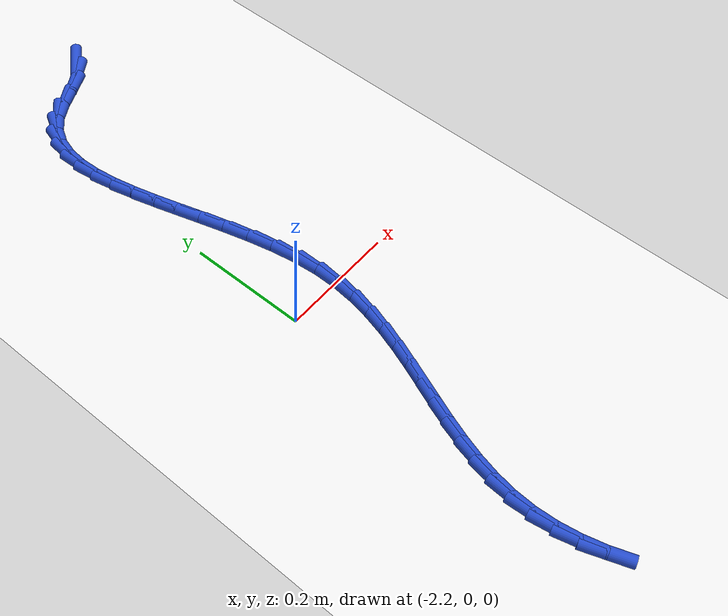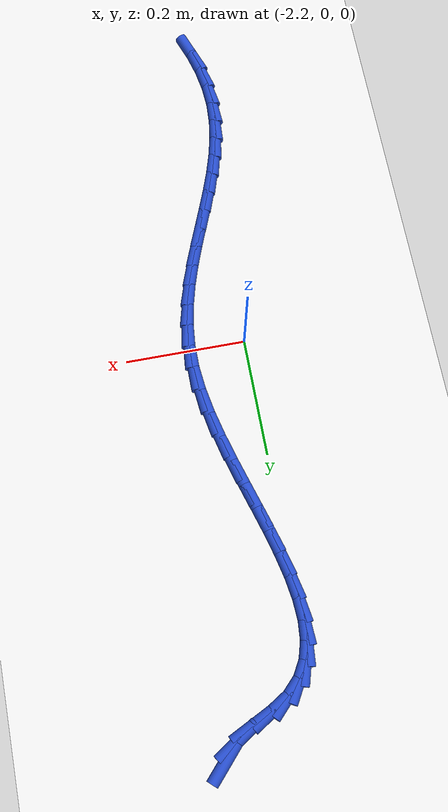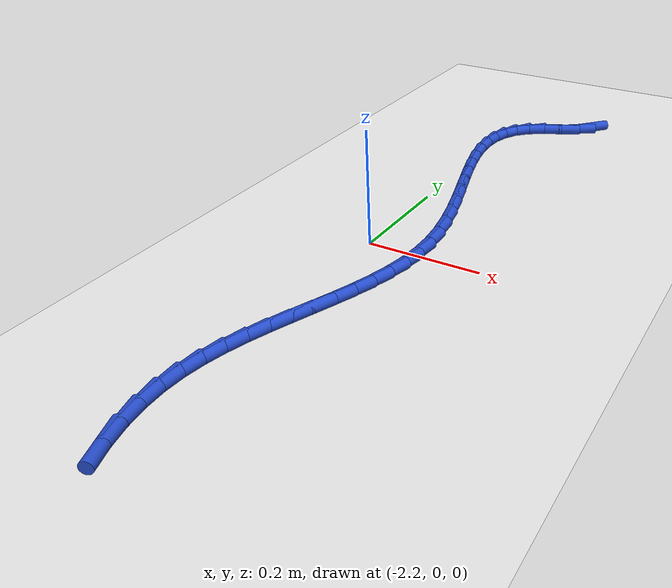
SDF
<sdf version="1.6">
 <world name="default">
  <model name="ground_plane">
   <static>1</static>
   <link name="link">
    <collision name="collision">
     <geometry><plane><normal>0 0 1</normal><size>100 100</size></plane></geometry>
     <surface><friction><ode><mu>100</mu><mu2>50</mu2></ode></friction></surface>
    </collision>
    <visual name="visual">
     <cast_shadows>0</cast_shadows>
     <geometry><plane><normal>0 0 1</normal><size>100 100</size></plane></geometry>
     <material>
      <script><uri>file://media/materials/scripts/gazebo.material</uri><name>Gazebo/WhiteGlow</name></script>
     </material>
    </visual>
   </link>
  </model>
  <model name="line">
   <link name="link_93">
    <pose>-2.044952308622921 0.6533621162688814 0.01 0 1.57 0.831932461259714</pose>
    <collision name="collision">
     <geometry><cylinder><radius>0.01</radius><length>0.08</length></cylinder></geometry>
    </collision>
    <visual name="visual">
     <material>
      <script><name>Gazebo/Blue</name><uri>file://media/materials/scripts/gazebo.material</uri></script>
     </material>
     <geometry><cylinder><radius>0.01</radius><length>0.08</length></cylinder></geometry>
    </visual>
   </link>
   <link name="link_94">
    <pose>-2.0663035255648667 0.6299252097527097 0.01 0 1.57 0.5781519270409127</pose>
    <collision name="collision">
     <geometry><cylinder><radius>0.01</radius><length>0.08</length></cylinder></geometry>
    </collision>
    <visual name="visual">
     <material>
      <script><name>Gazebo/Blue</name><uri>file://media/materials/scripts/gazebo.material</uri></script>
     </material>
     <geometry><cylinder><radius>0.01</radius><length>0.08</length></cylinder></geometry>
    </visual>
   </link>
   <link name="link_95">
    <pose>-2.094917768296748 0.6112535496528849 0.01 0 1.57 0.4502461342900132</pose>
    <collision name="collision">
     <geometry><cylinder><radius>0.01</radius><length>0.08</length></cylinder></geometry>
    </collision>
    <visual name="visual">
     <material>
      <script><name>Gazebo/Blue</name><uri>file://media/materials/scripts/gazebo.material</uri></script>
     </material>
     <geometry><cylinder><radius>0.01</radius><length>0.08</length></cylinder></geometry>
    </visual>
   </link>
   <link name="link_96">
    <pose>-2.1276013413956534 0.5954556612444428 0.01 0 1.57 0.5509774798069474</pose>
    <collision name="collision">
     <geometry><cylinder><radius>0.01</radius><length>0.08</length></cylinder></geometry>
    </collision>
    <visual name="visual">
     <material>
      <script><name>Gazebo/Blue</name><uri>file://media/materials/scripts/gazebo.material</uri></script>
     </material>
     <geometry><cylinder><radius>0.01</radius><length>0.08</length></cylinder></geometry>
    </visual>
   </link>
   <link name="link_97">
    <pose>-2.156287959641153 0.5778291419069826 0.01 0 1.57 0.7949116875358704</pose>
    <collision name="collision">
     <geometry><cylinder><radius>0.01</radius><length>0.08</length></cylinder></geometry>
    </collision>
    <visual name="visual">
     <material>
      <script><name>Gazebo/Blue</name><uri>file://media/materials/scripts/gazebo.material</uri></script>
     </material>
     <geometry><cylinder><radius>0.01</radius><length>0.08</length></cylinder></geometry>
    </visual>
   </link>
   <link name="link_98">
    <pose>-2.1774460260721145 0.5562646208462402 0.01 0 1.57 1.0557283186327908</pose>
    <collision name="collision">
     <geometry><cylinder><radius>0.01</radius><length>0.08</length></cylinder></geometry>
    </collision>
    <visual name="visual">
     <material>
      <script><name>Gazebo/Blue</name><uri>file://media/materials/scripts/gazebo.material</uri></script>
     </material>
     <geometry><cylinder><radius>0.01</radius><length>0.08</length></cylinder></geometry>
    </visual>
   </link>
   <link name="link_99">
    <pose>-2.1917221374079987 0.531043207895522 0.01 0 1.57 1.2915492542404634</pose>
    <collision name="collision">
     <geometry><cylinder><radius>0.01</radius><length>0.08</length></cylinder></geometry>
    </collision>
    <visual name="visual">
     <material>
      <script><name>Gazebo/Blue</name><uri>file://media/materials/scripts/gazebo.material</uri></script>
     </material>
     <geometry><cylinder><radius>0.01</radius><length>0.08</length></cylinder></geometry>
    </visual>
   </link>
   <link name="link_100">
    <pose>-2.199899642918046 0.5025242534738984 0.01 0 1.57 1.4800573517806421</pose>
    <collision name="collision">
     <geometry><cylinder><radius>0.01</radius><length>0.08</length></cylinder></geometry>
    </collision>
    <visual name="visual">
     <material>
      <script><name>Gazebo/Blue</name><uri>file://media/materials/scripts/gazebo.material</uri></script>
     </material>
     <geometry><cylinder><radius>0.01</radius><length>0.08</length></cylinder></geometry>
    </visual>
   </link>
   <link name="link_101">
    <pose>-2.202761891871494 0.47106710800044155 0.01 0 1.57 -1.5217799434433512</pose>
    <collision name="collision">
     <geometry><cylinder><radius>0.01</radius><length>0.08</length></cylinder></geometry>
    </collision>
    <visual name="visual">
     <material>
      <script><name>Gazebo/Blue</name><uri>file://media/materials/scripts/gazebo.material</uri></script>
     </material>
     <geometry><cylinder><radius>0.01</radius><length>0.08</length></cylinder></geometry>
    </visual>
   </link>
   <link name="link_102">
    <pose>-2.2010922335375813 0.43703112189422155 0.01 0 1.57 -1.4224487602350115</pose>
    <collision name="collision">
     <geometry><cylinder><radius>0.01</radius><length>0.08</length></cylinder></geometry>
    </collision>
    <visual name="visual">
     <material>
      <script><name>Gazebo/Blue</name><uri>file://media/materials/scripts/gazebo.material</uri></script>
     </material>
     <geometry><cylinder><radius>0.01</radius><length>0.08</length></cylinder></geometry>
    </visual>
   </link>
   <link name="link_103">
    <pose>-2.1956740171855476 0.4007756455743106 0.01 0 1.57 -1.3542963332754439</pose>
    <collision name="collision">
     <geometry><cylinder><radius>0.01</radius><length>0.08</length></cylinder></geometry>
    </collision>
    <visual name="visual">
     <material>
      <script><name>Gazebo/Blue</name><uri>file://media/materials/scripts/gazebo.material</uri></script>
     </material>
     <geometry><cylinder><radius>0.01</radius><length>0.08</length></cylinder></geometry>
    </visual>
   </link>
   <link name="link_104">
    <pose>-2.187290592084632 0.3626600294597793 0.01 0 1.57 -1.3101724949952873</pose>
    <collision name="collision">
     <geometry><cylinder><radius>0.01</radius><length>0.08</length></cylinder></geometry>
    </collision>
    <visual name="visual">
     <material>
      <script><name>Gazebo/Blue</name><uri>file://media/materials/scripts/gazebo.material</uri></script>
     </material>
     <geometry><cylinder><radius>0.01</radius><length>0.08</length></cylinder></geometry>
    </visual>
   </link>
   <link name="link_105">
    <pose>-2.176725307504072 0.3230436239696993 0.01 0 1.57 -1.2852825621000818</pose>
    <collision name="collision">
     <geometry><cylinder><radius>0.01</radius><length>0.08</length></cylinder></geometry>
    </collision>
    <visual name="visual">
     <material>
      <script><name>Gazebo/Blue</name><uri>file://media/materials/scripts/gazebo.material</uri></script>
     </material>
     <geometry><cylinder><radius>0.01</radius><length>0.08</length></cylinder></geometry>
    </visual>
   </link>
   <link name="link_106">
    <pose>-2.1647615127131066 0.2822857795231412 0.01 0 1.57 -1.2767580661294704</pose>
    <collision name="collision">
     <geometry><cylinder><radius>0.01</radius><length>0.08</length></cylinder></geometry>
    </collision>
    <visual name="visual">
     <material>
      <script><name>Gazebo/Blue</name><uri>file://media/materials/scripts/gazebo.material</uri></script>
     </material>
     <geometry><cylinder><radius>0.01</radius><length>0.08</length></cylinder></geometry>
    </visual>
   </link>
   <link name="link_107">
    <pose>-2.1521825569809754 0.24074584653917708 0.01 0 1.57 -1.2832364243620262</pose>
    <collision name="collision">
     <geometry><cylinder><radius>0.01</radius><length>0.08</length></cylinder></geometry>
    </collision>
    <visual name="visual">
     <material>
      <script><name>Gazebo/Blue</name><uri>file://media/materials/scripts/gazebo.material</uri></script>
     </material>
     <geometry><cylinder><radius>0.01</radius><length>0.08</length></cylinder></geometry>
    </visual>
   </link>
   <link name="link_108">
    <pose>-2.1397717895769164 0.19878317543687715 0.01 0 1.57 -1.3045979326550223</pose>
    <collision name="collision">
     <geometry><cylinder><radius>0.01</radius><length>0.08</length></cylinder></geometry>
    </collision>
    <visual name="visual">
     <material>
      <script><name>Gazebo/Blue</name><uri>file://media/materials/scripts/gazebo.material</uri></script>
     </material>
     <geometry><cylinder><radius>0.01</radius><length>0.08</length></cylinder></geometry>
    </visual>
   </link>
   <link name="link_109">
    <pose>-2.1283125597701695 0.15675711663531366 0.01 0 1.57 -1.3418525693171661</pose>
    <collision name="collision">
     <geometry><cylinder><radius>0.01</radius><length>0.08</length></cylinder></geometry>
    </collision>
    <visual name="visual">
     <material>
      <script><name>Gazebo/Blue</name><uri>file://media/materials/scripts/gazebo.material</uri></script>
     </material>
     <geometry><cylinder><radius>0.01</radius><length>0.08</length></cylinder></geometry>
    </visual>
   </link>
   <link name="link_110">
    <pose>-2.118588216829972 0.11502702055355671 0.01 0 1.57 -1.3971250213717685</pose>
    <collision name="collision">
     <geometry><cylinder><radius>0.01</radius><length>0.08</length></cylinder></geometry>
    </collision>
    <visual name="visual">
     <material>
      <script><name>Gazebo/Blue</name><uri>file://media/materials/scripts/gazebo.material</uri></script>
     </material>
     <geometry><cylinder><radius>0.01</radius><length>0.08</length></cylinder></geometry>
    </visual>
   </link>
   <link name="link_111">
    <pose>-2.1113821100255645 0.07395223761067869 0.01 0 1.57 -1.4736366704025128</pose>
    <collision name="collision">
     <geometry><cylinder><radius>0.01</radius><length>0.08</length></cylinder></geometry>
    </collision>
    <visual name="visual">
     <material>
      <script><name>Gazebo/Blue</name><uri>file://media/materials/scripts/gazebo.material</uri></script>
     </material>
     <geometry><cylinder><radius>0.01</radius><length>0.08</length></cylinder></geometry>
    </visual>
   </link>
   <link name="link_112">
    <pose>-2.107477588626184 0.03389211822575011 0.01 0 1.57 1.569566879979355</pose>
    <collision name="collision">
     <geometry><cylinder><radius>0.01</radius><length>0.08</length></cylinder></geometry>
    </collision>
    <visual name="visual">
     <material>
      <script><name>Gazebo/Blue</name><uri>file://media/materials/scripts/gazebo.material</uri></script>
     </material>
     <geometry><cylinder><radius>0.01</radius><length>0.08</length></cylinder></geometry>
    </visual>
   </link>
   <link name="link_113">
    <pose>-2.1075252135257485 -0.004844714443035523 0.01 0 1.57 1.4705594856462398</pose>
    <collision name="collision">
     <geometry><cylinder><radius>0.01</radius><length>0.08</length></cylinder></geometry>
    </collision>
    <visual name="visual">
     <material>
      <script><name>Gazebo/Blue</name><uri>file://media/materials/scripts/gazebo.material</uri></script>
     </material>
     <geometry><cylinder><radius>0.01</radius><length>0.08</length></cylinder></geometry>
    </visual>
   </link>
   <link name="link_114">
    <pose>-2.1112909859498448 -0.04228755302980149 0.01 0 1.57 1.3833446026816574</pose>
    <collision name="collision">
     <geometry><cylinder><radius>0.01</radius><length>0.08</length></cylinder></geometry>
    </collision>
    <visual name="visual">
     <material>
      <script><name>Gazebo/Blue</name><uri>file://media/materials/scripts/gazebo.material</uri></script>
     </material>
     <geometry><cylinder><radius>0.01</radius><length>0.08</length></cylinder></geometry>
    </visual>
   </link>
   <link name="link_115">
    <pose>-2.1181793992080156 -0.07860379191381112 0.01 0 1.57 1.3105684390459027</pose>
    <collision name="collision">
     <geometry><cylinder><radius>0.01</radius><length>0.08</length></cylinder></geometry>
    </collision>
    <visual name="visual">
     <material>
      <script><name>Gazebo/Blue</name><uri>file://media/materials/scripts/gazebo.material</uri></script>
     </material>
     <geometry><cylinder><radius>0.01</radius><length>0.08</length></cylinder></geometry>
    </visual>
   </link>
   <link name="link_116">
    <pose>-2.1275938695090284 -0.1139612369438722 0.01 0 1.57 1.2536929135223973</pose>
    <collision name="collision">
     <geometry><cylinder><radius>0.01</radius><length>0.08</length></cylinder></geometry>
    </collision>
    <visual name="visual">
     <material>
      <script><name>Gazebo/Blue</name><uri>file://media/materials/scripts/gazebo.material</uri></script>
     </material>
     <geometry><cylinder><radius>0.01</radius><length>0.08</length></cylinder></geometry>
    </visual>
   </link>
   <link name="link_117">
    <pose>-2.138937813061651 -0.14852769396879162 0.01 0 1.57 1.2133667143480118</pose>
    <collision name="collision">
     <geometry><cylinder><radius>0.01</radius><length>0.08</length></cylinder></geometry>
    </collision>
    <visual name="visual">
     <material>
      <script><name>Gazebo/Blue</name><uri>file://media/materials/scripts/gazebo.material</uri></script>
     </material>
     <geometry><cylinder><radius>0.01</radius><length>0.08</length></cylinder></geometry>
    </visual>
   </link>
   <link name="link_118">
    <pose>-2.1516146460746524 -0.18247096883737723 0.01 0 1.57 1.189827200727214</pose>
    <collision name="collision">
     <geometry><cylinder><radius>0.01</radius><length>0.08</length></cylinder></geometry>
    </collision>
    <visual name="visual">
     <material>
      <script><name>Gazebo/Blue</name><uri>file://media/materials/scripts/gazebo.material</uri></script>
     </material>
     <geometry><cylinder><radius>0.01</radius><length>0.08</length></cylinder></geometry>
    </visual>
   </link>
   <link name="link_119">
    <pose>-2.1650277847567985 -0.21595886739843417 0.01 0 1.57 1.1832284688659962</pose>
    <collision name="collision">
     <geometry><cylinder><radius>0.01</radius><length>0.08</length></cylinder></geometry>
    </collision>
    <visual name="visual">
     <material>
      <script><name>Gazebo/Blue</name><uri>file://media/materials/scripts/gazebo.material</uri></script>
     </material>
     <geometry><cylinder><radius>0.01</radius><length>0.08</length></cylinder></geometry>
    </visual>
   </link>
   <link name="link_120">
    <pose>-2.1785806453168584 -0.24915919550077031 0.01 0 1.57 1.1938450087404098</pose>
    <collision name="collision">
     <geometry><cylinder><radius>0.01</radius><length>0.08</length></cylinder></geometry>
    </collision>
    <visual name="visual">
     <material>
      <script><name>Gazebo/Blue</name><uri>file://media/materials/scripts/gazebo.material</uri></script>
     </material>
     <geometry><cylinder><radius>0.01</radius><length>0.08</length></cylinder></geometry>
    </visual>
   </link>
   <link name="link_121">
    <pose>-2.191676643963601 -0.28223975899319265 0.01 0 1.57 1.2221376311627217</pose>
    <collision name="collision">
     <geometry><cylinder><radius>0.01</radius><length>0.08</length></cylinder></geometry>
    </collision>
    <visual name="visual">
     <material>
      <script><name>Gazebo/Blue</name><uri>file://media/materials/scripts/gazebo.material</uri></script>
     </material>
     <geometry><cylinder><radius>0.01</radius><length>0.08</length></cylinder></geometry>
    </visual>
   </link>
   <link name="link_122">
    <pose>-2.2037191969057917 -0.3153683637245087 0.01 0 1.57 1.2686662041210388</pose>
    <collision name="collision">
     <geometry><cylinder><radius>0.01</radius><length>0.08</length></cylinder></geometry>
    </collision>
    <visual name="visual">
     <material>
      <script><name>Gazebo/Blue</name><uri>file://media/materials/scripts/gazebo.material</uri></script>
     </material>
     <geometry><cylinder><radius>0.01</radius><length>0.08</length></cylinder></geometry>
    </visual>
   </link>
   <link name="link_123">
    <pose>-2.2141117203522 -0.34871281554352396 0.01 0 1.57 1.3338174754252698</pose>
    <collision name="collision">
     <geometry><cylinder><radius>0.01</radius><length>0.08</length></cylinder></geometry>
    </collision>
    <visual name="visual">
     <material>
      <script><name>Gazebo/Blue</name><uri>file://media/materials/scripts/gazebo.material</uri></script>
     </material>
     <geometry><cylinder><radius>0.01</radius><length>0.08</length></cylinder></geometry>
    </visual>
   </link>
   <link name="link_124">
    <pose>-2.222257630511594 -0.3824409202990461 0.01 0 1.57 1.417322557113657</pose>
    <collision name="collision">
     <geometry><cylinder><radius>0.01</radius><length>0.08</length></cylinder></geometry>
    </collision>
    <visual name="visual">
     <material>
      <script><name>Gazebo/Blue</name><uri>file://media/materials/scripts/gazebo.material</uri></script>
     </material>
     <geometry><cylinder><radius>0.01</radius><length>0.08</length></cylinder></geometry>
    </visual>
   </link>
   <link name="link_125">
    <pose>-2.2275603435927405 -0.4167204838398819 0.01 0 1.57 1.5176180948243898</pose>
    <collision name="collision">
     <geometry><cylinder><radius>0.01</radius><length>0.08</length></cylinder></geometry>
    </collision>
    <visual name="visual">
     <material>
      <script><name>Gazebo/Blue</name><uri>file://media/materials/scripts/gazebo.material</uri></script>
     </material>
     <geometry><cylinder><radius>0.01</radius><length>0.08</length></cylinder></geometry>
    </visual>
   </link>
   <link name="link_126">
    <pose>-2.2294232758044084 -0.4517193120148395 0.01 0 1.57 -1.513043994465017</pose>
    <collision name="collision">
     <geometry><cylinder><radius>0.01</radius><length>0.08</length></cylinder></geometry>
    </collision>
    <visual name="visual">
     <material>
      <script><name>Gazebo/Blue</name><uri>file://media/materials/scripts/gazebo.material</uri></script>
     </material>
     <geometry><cylinder><radius>0.01</radius><length>0.08</length></cylinder></geometry>
    </visual>
   </link>
   <link name="link_127">
    <pose>-2.2273531374553945 -0.48752455521202015 0.01 0 1.57 -1.4080849401286488</pose>
    <collision name="collision">
     <geometry><cylinder><radius>0.01</radius><length>0.08</length></cylinder></geometry>
    </collision>
    <visual name="visual">
     <material>
      <script><name>Gazebo/Blue</name><uri>file://media/materials/scripts/gazebo.material</uri></script>
     </material>
     <geometry><cylinder><radius>0.01</radius><length>0.08</length></cylinder></geometry>
    </visual>
   </link>
   <link name="link_128">
    <pose>-2.221397949686399 -0.5238006903607452 0.01 0 1.57 -1.3116728723431812</pose>
    <collision name="collision">
     <geometry><cylinder><radius>0.01</radius><length>0.08</length></cylinder></geometry>
    </collision>
    <visual name="visual">
     <material>
      <script><name>Gazebo/Blue</name><uri>file://media/materials/scripts/gazebo.material</uri></script>
     </material>
     <geometry><cylinder><radius>0.01</radius><length>0.08</length></cylinder></geometry>
    </visual>
   </link>
   <link name="link_129">
    <pose>-2.211782450047563 -0.5600742083542175 0.01 0 1.57 -1.221192382470628</pose>
    <collision name="collision">
     <geometry><cylinder><radius>0.01</radius><length>0.08</length></cylinder></geometry>
    </collision>
    <visual name="visual">
     <material>
      <script><name>Gazebo/Blue</name><uri>file://media/materials/scripts/gazebo.material</uri></script>
     </material>
     <geometry><cylinder><radius>0.01</radius><length>0.08</length></cylinder></geometry>
    </visual>
   </link>
  </model>
 </world>
</sdf>
